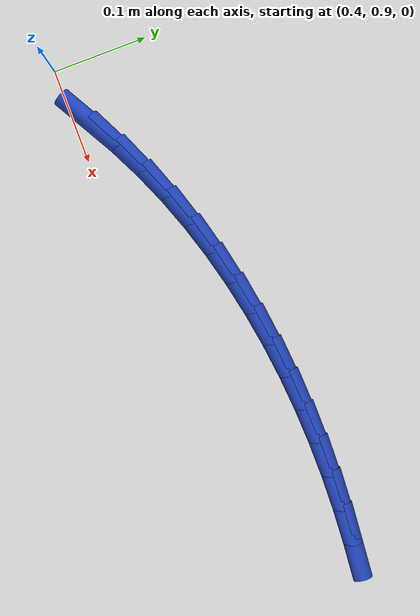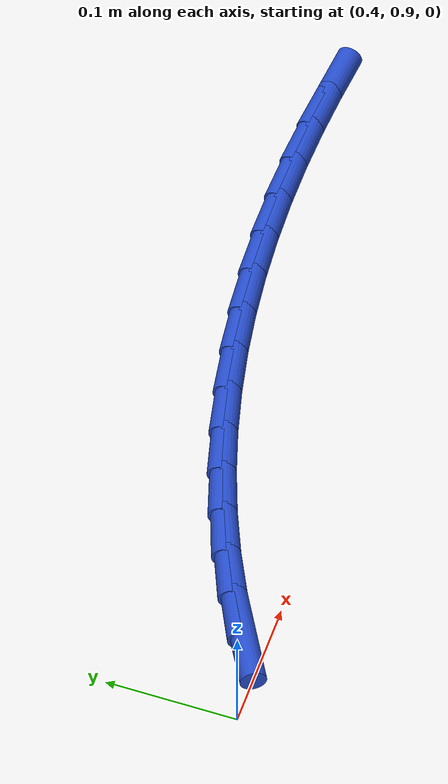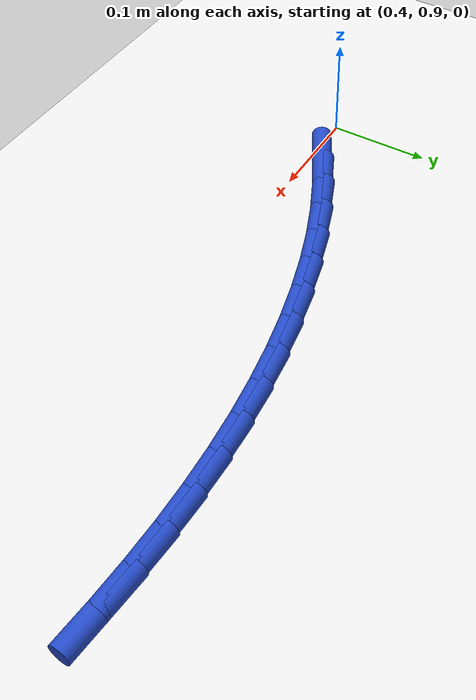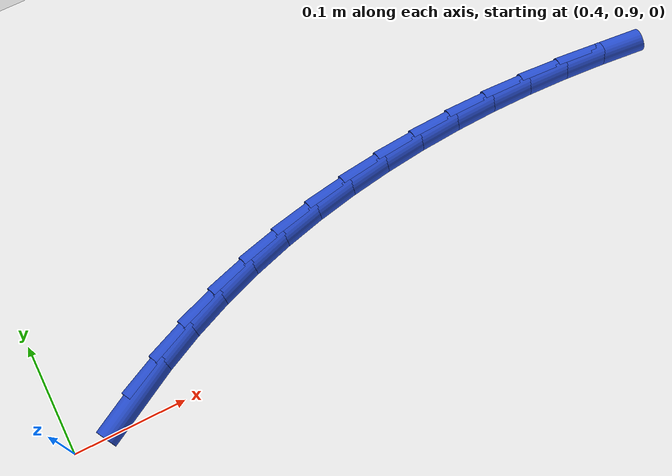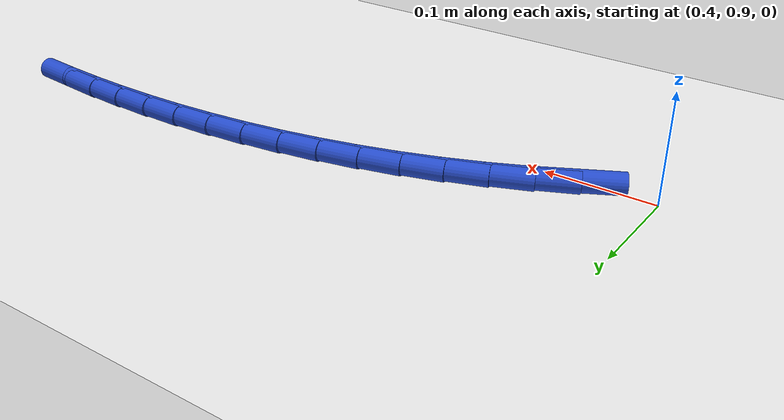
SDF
<sdf version="1.6">
 <world name="default">
  <model name="ground_plane">
   <static>1</static>
   <link name="link">
    <collision name="collision">
     <geometry><plane><normal>0 0 1</normal><size>100 100</size></plane></geometry>
     <surface><friction><ode><mu>100</mu><mu2>50</mu2></ode></friction></surface>
    </collision>
    <visual name="visual">
     <cast_shadows>0</cast_shadows>
     <geometry><plane><normal>0 0 1</normal><size>100 100</size></plane></geometry>
     <material>
      <script><uri>file://media/materials/scripts/gazebo.material</uri><name>Gazebo/WhiteGlow</name></script>
     </material>
    </visual>
   </link>
  </model>
  <model name="line">
   <link name="link_29">
    <pose>0.4636634771466193 0.9171064917454208 0.01 0 1.57 0.5113390981478179</pose>
    <collision name="collision">
     <geometry><cylinder><radius>0.01</radius><length>0.08</length></cylinder></geometry>
    </collision>
    <visual name="visual">
     <material>
      <script><name>Gazebo/Blue</name><uri>file://media/materials/scripts/gazebo.material</uri></script>
     </material>
     <geometry><cylinder><radius>0.01</radius><length>0.08</length></cylinder></geometry>
    </visual>
   </link>
   <link name="link_30">
    <pose>0.4957002908360506 0.935082928177658 0.01 0 1.57 0.45474282478008005</pose>
    <collision name="collision">
     <geometry><cylinder><radius>0.01</radius><length>0.08</length></cylinder></geometry>
    </collision>
    <visual name="visual">
     <material>
      <script><name>Gazebo/Blue</name><uri>file://media/materials/scripts/gazebo.material</uri></script>
     </material>
     <geometry><cylinder><radius>0.01</radius><length>0.08</length></cylinder></geometry>
    </visual>
   </link>
   <link name="link_31">
    <pose>0.528693932313233 0.9512141156221596 0.01 0 1.57 0.3993133383227738</pose>
    <collision name="collision">
     <geometry><cylinder><radius>0.01</radius><length>0.08</length></cylinder></geometry>
    </collision>
    <visual name="visual">
     <material>
      <script><name>Gazebo/Blue</name><uri>file://media/materials/scripts/gazebo.material</uri></script>
     </material>
     <geometry><cylinder><radius>0.01</radius><length>0.08</length></cylinder></geometry>
    </visual>
   </link>
   <link name="link_32">
    <pose>0.5625593258335817 0.9655047714756152 0.01 0 1.57 0.34645957079151485</pose>
    <collision name="collision">
     <geometry><cylinder><radius>0.01</radius><length>0.08</length></cylinder></geometry>
    </collision>
    <visual name="visual">
     <material>
      <script><name>Gazebo/Blue</name><uri>file://media/materials/scripts/gazebo.material</uri></script>
     </material>
     <geometry><cylinder><radius>0.01</radius><length>0.08</length></cylinder></geometry>
    </visual>
   </link>
   <link name="link_33">
    <pose>0.5971916758354735 0.9780077937307731 0.01 0 1.57 0.2961347690362358</pose>
    <collision name="collision">
     <geometry><cylinder><radius>0.01</radius><length>0.08</length></cylinder></geometry>
    </collision>
    <visual name="visual">
     <material>
      <script><name>Gazebo/Blue</name><uri>file://media/materials/scripts/gazebo.material</uri></script>
     </material>
     <geometry><cylinder><radius>0.01</radius><length>0.08</length></cylinder></geometry>
    </visual>
   </link>
   <link name="link_34">
    <pose>0.6324860822223001 0.9887763357862958 0.01 0 1.57 0.2482397640339947</pose>
    <collision name="collision">
     <geometry><cylinder><radius>0.01</radius><length>0.08</length></cylinder></geometry>
    </collision>
    <visual name="visual">
     <material>
      <script><name>Gazebo/Blue</name><uri>file://media/materials/scripts/gazebo.material</uri></script>
     </material>
     <geometry><cylinder><radius>0.01</radius><length>0.08</length></cylinder></geometry>
    </visual>
   </link>
   <link name="link_35">
    <pose>0.6683376448974537 0.9978635510408455 0.01 0 1.57 0.20264157041888395</pose>
    <collision name="collision">
     <geometry><cylinder><radius>0.01</radius><length>0.08</length></cylinder></geometry>
    </collision>
    <visual name="visual">
     <material>
      <script><name>Gazebo/Blue</name><uri>file://media/materials/scripts/gazebo.material</uri></script>
     </material>
     <geometry><cylinder><radius>0.01</radius><length>0.08</length></cylinder></geometry>
    </visual>
   </link>
   <link name="link_36">
    <pose>0.704641463764326 1.0053225928930847 0.01 0 1.57 0.1591828618495089</pose>
    <collision name="collision">
     <geometry><cylinder><radius>0.01</radius><length>0.08</length></cylinder></geometry>
    </collision>
    <visual name="visual">
     <material>
      <script><name>Gazebo/Blue</name><uri>file://media/materials/scripts/gazebo.material</uri></script>
     </material>
     <geometry><cylinder><radius>0.01</radius><length>0.08</length></cylinder></geometry>
    </visual>
   </link>
   <link name="link_37">
    <pose>0.7412926387263085 1.0112066147416758 0.01 0 1.57 0.11768960297802805</pose>
    <collision name="collision">
     <geometry><cylinder><radius>0.01</radius><length>0.08</length></cylinder></geometry>
    </collision>
    <visual name="visual">
     <material>
      <script><name>Gazebo/Blue</name><uri>file://media/materials/scripts/gazebo.material</uri></script>
     </material>
     <geometry><cylinder><radius>0.01</radius><length>0.08</length></cylinder></geometry>
    </visual>
   </link>
   <link name="link_38">
    <pose>0.7781862696867932 1.0155687699852811 0.01 0 1.57 0.07797684832110709</pose>
    <collision name="collision">
     <geometry><cylinder><radius>0.01</radius><length>0.08</length></cylinder></geometry>
    </collision>
    <visual name="visual">
     <material>
      <script><name>Gazebo/Blue</name><uri>file://media/materials/scripts/gazebo.material</uri></script>
     </material>
     <geometry><cylinder><radius>0.01</radius><length>0.08</length></cylinder></geometry>
    </visual>
   </link>
   <link name="link_39">
    <pose>0.8152174565491722 1.0184622120225633 0.01 0 1.57 0.039852849169684706</pose>
    <collision name="collision">
     <geometry><cylinder><radius>0.01</radius><length>0.08</length></cylinder></geometry>
    </collision>
    <visual name="visual">
     <material>
      <script><name>Gazebo/Blue</name><uri>file://media/materials/scripts/gazebo.material</uri></script>
     </material>
     <geometry><cylinder><radius>0.01</radius><length>0.08</length></cylinder></geometry>
    </visual>
   </link>
   <link name="link_40">
    <pose>0.8522812992168369 1.0199400942521841 0.01 0 1.57 0.00312166682691249</pose>
    <collision name="collision">
     <geometry><cylinder><radius>0.01</radius><length>0.08</length></cylinder></geometry>
    </collision>
    <visual name="visual">
     <material>
      <script><name>Gazebo/Blue</name><uri>file://media/materials/scripts/gazebo.material</uri></script>
     </material>
     <geometry><cylinder><radius>0.01</radius><length>0.08</length></cylinder></geometry>
    </visual>
   </link>
   <link name="link_41">
    <pose>0.8892728975931793 1.0200555700728067 0.01 0 1.57 -0.03236474012850684</pose>
    <collision name="collision">
     <geometry><cylinder><radius>0.01</radius><length>0.08</length></cylinder></geometry>
    </collision>
    <visual name="visual">
     <material>
      <script><name>Gazebo/Blue</name><uri>file://media/materials/scripts/gazebo.material</uri></script>
     </material>
     <geometry><cylinder><radius>0.01</radius><length>0.08</length></cylinder></geometry>
    </visual>
   </link>
   <link name="link_42">
    <pose>0.9260890296478109 1.0188636093136663 0.01 0 1.57 -0.06479041760330709</pose>
    <collision name="collision">
     <geometry><cylinder><radius>0.01</radius><length>0.08</length></cylinder></geometry>
    </collision>
    <visual name="visual">
     <material>
      <script><name>Gazebo/Blue</name><uri>file://media/materials/scripts/gazebo.material</uri></script>
     </material>
     <geometry><cylinder><radius>0.01</radius><length>0.08</length></cylinder></geometry>
    </visual>
   </link>
   <link name="link_43">
    <pose>0.9626908252589149 1.0164888398263159 0.01 0 1.57 -0.09150485835991794</pose>
    <collision name="collision">
     <geometry><cylinder><radius>0.01</radius><length>0.08</length></cylinder></geometry>
    </collision>
    <visual name="visual">
     <material>
      <script><name>Gazebo/Blue</name><uri>file://media/materials/scripts/gazebo.material</uri></script>
     </material>
     <geometry><cylinder><radius>0.01</radius><length>0.08</length></cylinder></geometry>
    </visual>
   </link>
  </model>
 </world>
</sdf>
